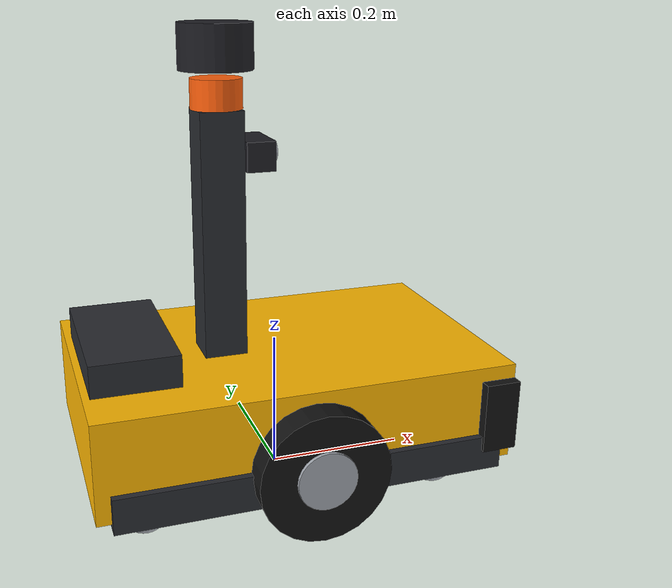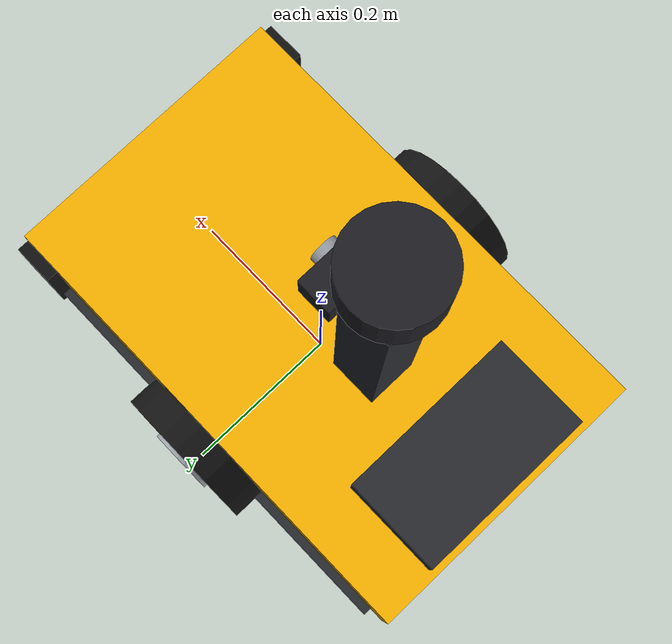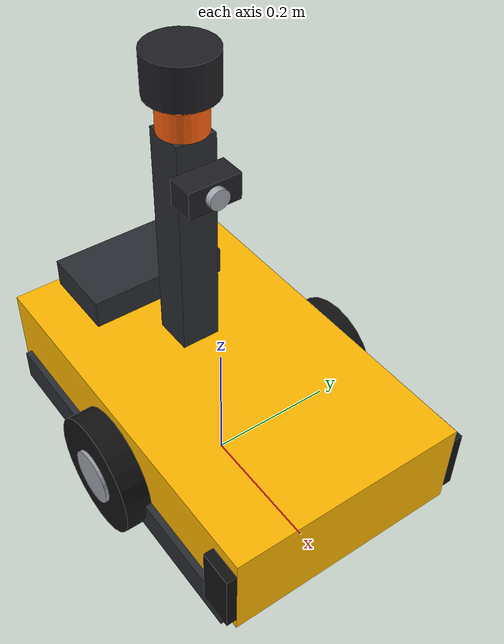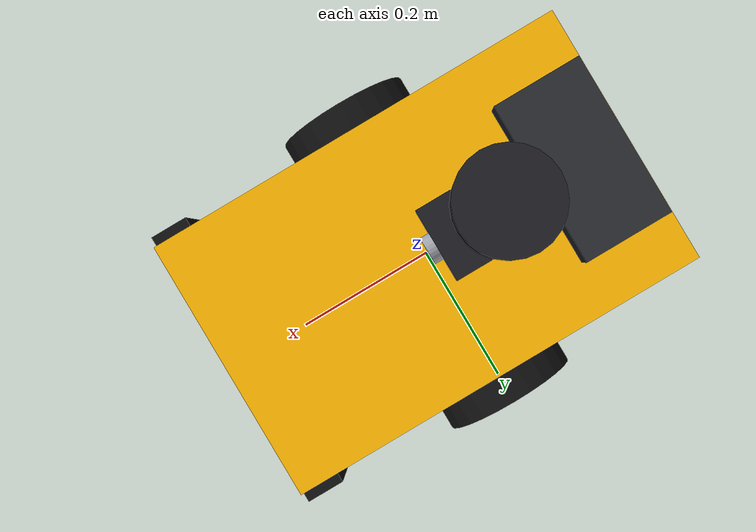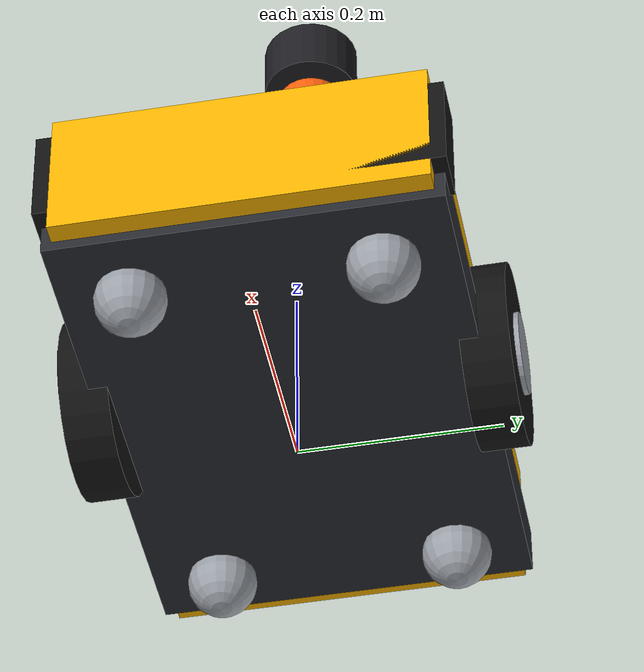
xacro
<?xml version="1.0"?>
<robot xmlns:xacro="http://www.ros.org/wiki/xacro" name="sentra">

  <!-- Load the original SENTRA robot model -->
  <xacro:include filename="$(find sentra_description)/urdf/sentra.urdf.xacro"/>

  <!-- ROS 2 Control hardware interfaces -->
  <ros2_control name="GazeboSimSystem" type="system">

    <hardware>
      <plugin>gz_ros2_control/GazeboSimSystem</plugin>
    </hardware>

    <!-- Left drive wheel -->
    <joint name="left_wheel_joint">
      <command_interface name="velocity"/>
      <state_interface name="position"/>
      <state_interface name="velocity"/>
    </joint>

    <!-- Right drive wheel -->
    <joint name="right_wheel_joint">
      <command_interface name="velocity"/>
      <state_interface name="position"/>
      <state_interface name="velocity"/>
    </joint>

  </ros2_control>

  <!-- Reduce ground friction on fixed spherical caster wheels -->
  <gazebo reference="front_left_caster_link">
    <mu1>0.001</mu1>
    <mu2>0.001</mu2>
  </gazebo>

  <gazebo reference="front_right_caster_link">
    <mu1>0.001</mu1>
    <mu2>0.001</mu2>
  </gazebo>

  <gazebo reference="rear_left_caster_link">
    <mu1>0.001</mu1>
    <mu2>0.001</mu2>
  </gazebo>

  <gazebo reference="rear_right_caster_link">
    <mu1>0.001</mu1>
    <mu2>0.001</mu2>
  </gazebo>

  <!-- SENTRA 2D LiDAR sensor -->
  <gazebo reference="lidar_link">
    <sensor name="sentra_lidar" type="gpu_lidar">
      <pose>0 0 0 0 0 0</pose>
      <topic>/scan</topic>
      <update_rate>10</update_rate>

      <lidar>
        <scan>
          <horizontal>
            <samples>720</samples>
            <resolution>1</resolution>
            <min_angle>-3.14159</min_angle>
            <max_angle>3.14159</max_angle>
          </horizontal>
        </scan>

        <range>
          <min>0.12</min>
          <max>12.0</max>
          <resolution>0.01</resolution>
        </range>
      </lidar>

      <always_on>true</always_on>
      <visualize>true</visualize>
    </sensor>
  </gazebo>

  <!-- Gazebo Harmonic ROS 2 Control plugin -->
  <gazebo>
    <plugin
      filename="libgz_ros2_control-system.so"
      name="gz_ros2_control::GazeboSimROS2ControlPlugin">

      <parameters>
        $(find sentra_gazebo)/config/controllers.yaml
      </parameters>

    </plugin>
  </gazebo>

</robot>

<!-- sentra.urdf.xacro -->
<robot xmlns:xacro="http://www.ros.org/wiki/xacro" name="sentra">

  <xacro:include filename="$(find sentra_description)/urdf/sentra_materials.xacro"/>

  <xacro:property name="wheel_radius" value="0.090"/>
  <xacro:property name="wheel_width" value="0.048"/>
  <xacro:property name="wheel_y" value="0.195"/>
  <xacro:property name="caster_radius" value="0.035"/>
  <xacro:property name="chassis_x" value="0.58"/>
  <xacro:property name="chassis_y" value="0.36"/>
  <xacro:property name="chassis_z" value="0.14"/>
  <xacro:property name="chassis_lift" value="0.125"/>

  <!-- ========== BASE / BODY ========== -->
  <!-- Several visuals share one link so TF stays small. Collision is a single box. -->
  <link name="base_link">
    <xacro:box_inertia
        mass="18.0"
        x="${chassis_x}"
        y="${chassis_y}"
        z="${chassis_z}"
        origin_xyz="0 0 ${chassis_lift}"/>
    <visual>
      <origin xyz="0 0 ${chassis_lift}" rpy="0 0 0"/>
      <geometry>
        <box size="${chassis_x} ${chassis_y} ${chassis_z}"/>
      </geometry>
      <material name="safety_yellow"/>
    </visual>
    <visual>
      <origin xyz="0 0 ${chassis_lift - 0.055}" rpy="0 0 0"/>
      <geometry>
        <box size="${chassis_x - 0.04} ${chassis_y + 0.02} 0.05"/>
      </geometry>
      <material name="charcoal"/>
    </visual>
    <visual>
      <origin xyz="${chassis_x/2 - 0.025} 0 ${chassis_lift}" rpy="0 0 0"/>
      <geometry>
        <box size="0.05 ${chassis_y + 0.03} 0.10"/>
      </geometry>
      <material name="rubber_black"/>
    </visual>
    <visual>
      <origin xyz="-0.22 0 ${chassis_lift + 0.09}" rpy="0 0 0"/>
      <geometry>
        <box size="0.12 0.22 0.05"/>
      </geometry>
      <material name="charcoal"/>
    </visual>
    <collision>
      <origin xyz="0 0 ${chassis_lift}" rpy="0 0 0"/>
      <geometry>
        <box size="${chassis_x} ${chassis_y} ${chassis_z}"/>
      </geometry>
    </collision>
  </link>

  <!-- ========== DRIVE WHEELS (movable) ========== -->
  <xacro:macro name="drive_wheel" params="prefix y">
    <link name="${prefix}_wheel_link">
      <xacro:wheel_inertia mass="1.2" radius="${wheel_radius}" length="${wheel_width}"/>
      <visual>
        <origin xyz="0 0 0" rpy="${pi/2} 0 0"/>
        <geometry>
          <cylinder radius="${wheel_radius}" length="${wheel_width}"/>
        </geometry>
        <material name="rubber_black"/>
      </visual>
      <visual>
        <origin xyz="0 0 0" rpy="${pi/2} 0 0"/>
        <geometry>
          <cylinder radius="${wheel_radius * 0.45}" length="${wheel_width + 0.01}"/>
        </geometry>
        <material name="metal_grey"/>
      </visual>
      <collision>
        <origin xyz="0 0 0" rpy="${pi/2} 0 0"/>
        <geometry>
          <cylinder radius="${wheel_radius}" length="${wheel_width}"/>
        </geometry>
      </collision>
    </link>
    <joint name="${prefix}_wheel_joint" type="continuous">
      <parent link="base_link"/>
      <child link="${prefix}_wheel_link"/>
      <origin xyz="0 ${y} ${wheel_radius}" rpy="0 0 0"/>
      <axis xyz="0 1 0"/>
    </joint>
  </xacro:macro>

  <xacro:drive_wheel prefix="left" y="${wheel_y}"/>
  <xacro:drive_wheel prefix="right" y="${-wheel_y}"/>

  <!-- ========== CASTERS (fixed) ========== -->
  <xacro:macro name="caster" params="name x y">
    <link name="${name}_link">
      <xacro:sphere_inertia mass="0.3" radius="${caster_radius}"/>
      <visual>
        <origin xyz="0 0 0" rpy="0 0 0"/>
        <geometry>
          <sphere radius="${caster_radius}"/>
        </geometry>
        <material name="metal_grey"/>
      </visual>
      <collision>
        <origin xyz="0 0 0" rpy="0 0 0"/>
        <geometry>
          <sphere radius="${caster_radius}"/>
        </geometry>
      </collision>
    </link>
    <joint name="${name}_joint" type="fixed">
      <parent link="base_link"/>
      <child link="${name}_link"/>
      <origin xyz="${x} ${y} ${caster_radius}" rpy="0 0 0"/>
    </joint>
  </xacro:macro>

  <xacro:caster name="front_left_caster" x="0.20" y="0.12"/>
  <xacro:caster name="front_right_caster" x="0.20" y="-0.12"/>
  <xacro:caster name="rear_left_caster" x="-0.22" y="0.12"/>
  <xacro:caster name="rear_right_caster" x="-0.22" y="-0.12"/>

  <!-- ========== SENSOR MAST ========== -->
  <link name="mast_link">
    <xacro:box_inertia
        mass="1.5"
        x="0.06"
        y="0.06"
        z="0.34"
        origin_xyz="0 0 0.17"/>
    <visual>
      <origin xyz="0 0 0.17" rpy="0 0 0"/>
      <geometry>
        <box size="0.06 0.06 0.34"/>
      </geometry>
      <material name="charcoal"/>
    </visual>
    <visual>
      <origin xyz="0 0 0.36" rpy="0 0 0"/>
      <geometry>
        <cylinder radius="0.035" length="0.04"/>
      </geometry>
      <material name="beacon_amber"/>
    </visual>
    <collision>
      <origin xyz="0 0 0.17" rpy="0 0 0"/>
      <geometry>
        <box size="0.06 0.06 0.34"/>
      </geometry>
    </collision>
  </link>
  <joint name="mast_joint" type="fixed">
    <parent link="base_link"/>
    <child link="mast_link"/>
    <origin xyz="-0.08 0 ${chassis_lift + chassis_z/2}" rpy="0 0 0"/>
  </joint>

  <link name="lidar_link">
    <xacro:cylinder_inertia mass="0.4" radius="0.05" length="0.06"/>
    <visual>
      <origin xyz="0 0 0" rpy="0 0 0"/>
      <geometry>
        <cylinder radius="0.05" length="0.06"/>
      </geometry>
      <material name="sensor_black"/>
    </visual>
    <collision>
      <origin xyz="0 0 0" rpy="0 0 0"/>
      <geometry>
        <cylinder radius="0.05" length="0.06"/>
      </geometry>
    </collision>
  </link>
  <joint name="lidar_joint" type="fixed">
    <parent link="mast_link"/>
    <child link="lidar_link"/>
    <origin xyz="0 0 0.42" rpy="0 0 0"/>
  </joint>

  <link name="camera_link">
    <xacro:box_inertia mass="0.15" x="0.04" y="0.08" z="0.04"/>
    <visual>
      <origin xyz="0 0 0" rpy="0 0 0"/>
      <geometry>
        <box size="0.04 0.08 0.04"/>
      </geometry>
      <material name="sensor_black"/>
    </visual>
    <visual>
      <origin xyz="0.025 0 0" rpy="0 1.5708 0"/>
      <geometry>
        <cylinder radius="0.015" length="0.01"/>
      </geometry>
      <material name="metal_grey"/>
    </visual>
    <collision>
      <origin xyz="0 0 0" rpy="0 0 0"/>
      <geometry>
        <box size="0.04 0.08 0.04"/>
      </geometry>
    </collision>
  </link>
  <joint name="camera_joint" type="fixed">
    <parent link="mast_link"/>
    <child link="camera_link"/>
    <origin xyz="0.05 0 0.28" rpy="0 0 0"/>
  </joint>

  <link name="imu_link">
    <xacro:box_inertia mass="0.05" x="0.03" y="0.03" z="0.02"/>
    <visual>
      <origin xyz="0 0 0" rpy="0 0 0"/>
      <geometry>
        <box size="0.03 0.03 0.02"/>
      </geometry>
      <material name="metal_grey"/>
    </visual>
  </link>
  <joint name="imu_joint" type="fixed">
    <parent link="base_link"/>
    <child link="imu_link"/>
    <origin xyz="0.05 0 ${chassis_lift}" rpy="0 0 0"/>
  </joint>
</robot>

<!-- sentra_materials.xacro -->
<robot xmlns:xacro="http://www.ros.org/wiki/xacro">
  <!-- Reusable colours and inertia helpers for SENTRA. Not a full robot by itself. -->

  <material name="safety_yellow">
    <color rgba="1.0 0.72 0.0 1.0"/>
  </material>
  <material name="charcoal">
    <color rgba="0.16 0.17 0.19 1.0"/>
  </material>
  <material name="rubber_black">
    <color rgba="0.07 0.07 0.07 1.0"/>
  </material>
  <material name="metal_grey">
    <color rgba="0.62 0.64 0.67 1.0"/>
  </material>
  <material name="sensor_black">
    <color rgba="0.12 0.12 0.14 1.0"/>
  </material>
  <material name="beacon_amber">
    <color rgba="1.0 0.38 0.05 1.0"/>
  </material>

  <!-- Solid box inertia about its centre of mass.
     origin_xyz positions the inertial frame relative to the link frame. -->
  <xacro:macro name="box_inertia" params="mass x y z origin_xyz:='0 0 0'">
    <inertial>
      <origin xyz="${origin_xyz}" rpy="0 0 0"/>
      <mass value="${mass}"/>
      <inertia
        ixx="${mass * (y*y + z*z) / 12.0}"
        ixy="0.0"
        ixz="0.0"
        iyy="${mass * (x*x + z*z) / 12.0}"
        iyz="0.0"
        izz="${mass * (x*x + y*y) / 12.0}"/>
    </inertial>
  </xacro:macro>

  <!-- Cylinder along Z (URDF default). Rotate the joint/visual if the cylinder should lie on Y. -->
  <xacro:macro name="cylinder_inertia" params="mass radius length">
    <inertial>
      <mass value="${mass}"/>
      <inertia
        ixx="${mass * (3*radius*radius + length*length) / 12.0}"
        ixy="0.0"
        ixz="0.0"
        iyy="${mass * (3*radius*radius + length*length) / 12.0}"
        iyz="0.0"
        izz="${mass * radius*radius / 2.0}"/>
    </inertial>
  </xacro:macro>

  <xacro:macro name="wheel_inertia" params="mass radius length">
    <inertial>
      <mass value="${mass}"/>
      <inertia
        ixx="${mass * (3*radius*radius + length*length) / 12.0}"
        ixy="0.0"
        ixz="0.0"
        iyy="${mass * radius*radius / 2.0}"
        iyz="0.0"
        izz="${mass * (3*radius*radius + length*length) / 12.0}"/>
    </inertial>
  </xacro:macro>

  <xacro:macro name="sphere_inertia" params="mass radius">
    <inertial>
      <mass value="${mass}"/>
      <inertia
        ixx="${0.4 * mass * radius * radius}"
        ixy="0.0"
        ixz="0.0"
        iyy="${0.4 * mass * radius * radius}"
        iyz="0.0"
        izz="${0.4 * mass * radius * radius}"/>
    </inertial>
  </xacro:macro>
</robot>
